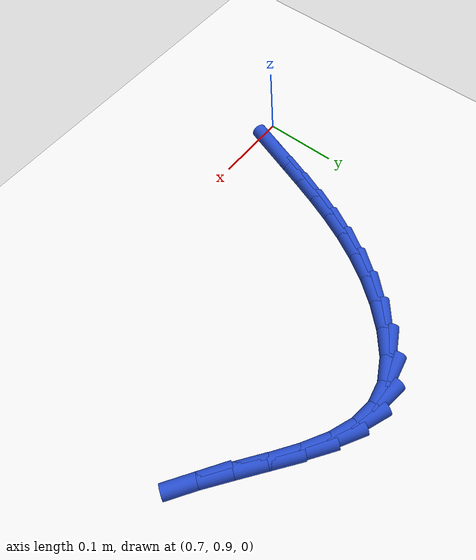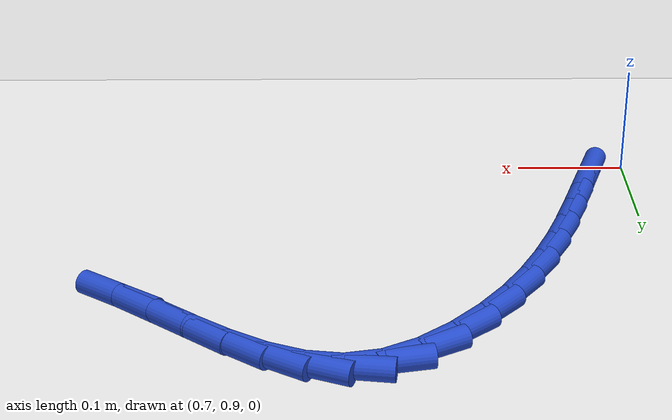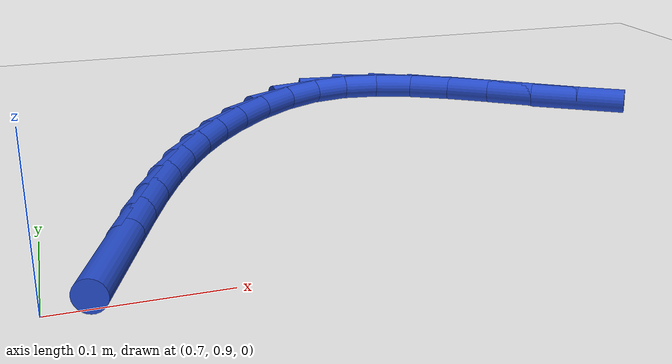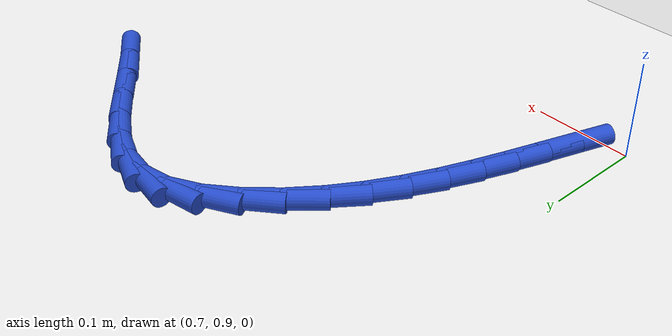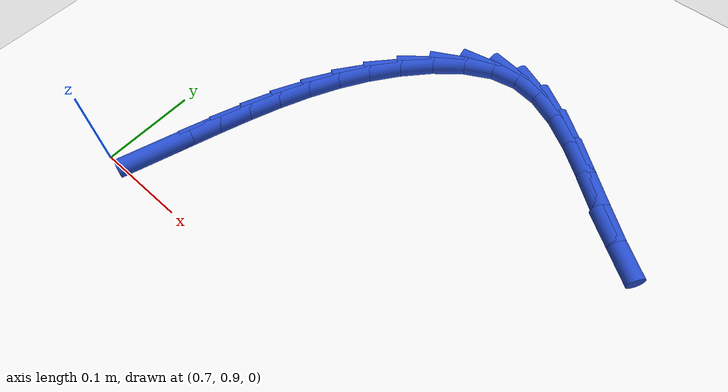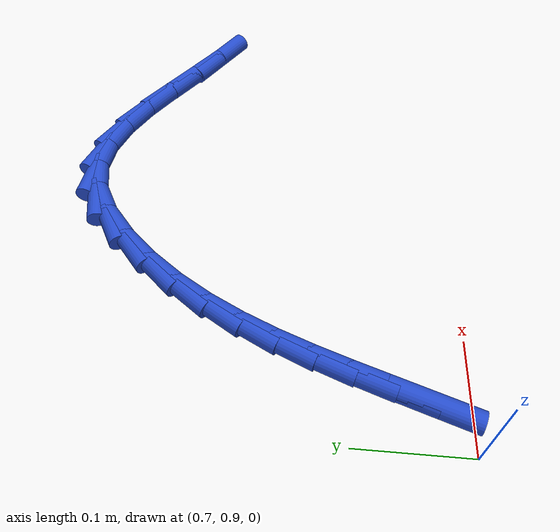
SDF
<sdf version="1.6">
 <world name="default">
  <model name="ground_plane">
   <static>1</static>
   <link name="link">
    <collision name="collision">
     <geometry><plane><normal>0 0 1</normal><size>100 100</size></plane></geometry>
     <surface><friction><ode><mu>100</mu><mu2>50</mu2></ode></friction></surface>
    </collision>
    <visual name="visual">
     <cast_shadows>0</cast_shadows>
     <geometry><plane><normal>0 0 1</normal><size>100 100</size></plane></geometry>
     <material>
      <script><uri>file://media/materials/scripts/gazebo.material</uri><name>Gazebo/WhiteGlow</name></script>
     </material>
    </visual>
   </link>
  </model>
  <model name="line">
   <link name="link_36">
    <pose>0.7375083986811577 0.9323461440054251 0.01 0 1.57 1.2480430231626474</pose>
    <collision name="collision">
     <geometry><cylinder><radius>0.01</radius><length>0.08</length></cylinder></geometry>
    </collision>
    <visual name="visual">
     <material>
      <script><name>Gazebo/Blue</name><uri>file://media/materials/scripts/gazebo.material</uri></script>
     </material>
     <geometry><cylinder><radius>0.01</radius><length>0.08</length></cylinder></geometry>
    </visual>
   </link>
   <link name="link_37">
    <pose>0.7485555973416003 0.9653772964910049 0.01 0 1.57 1.247229006031626</pose>
    <collision name="collision">
     <geometry><cylinder><radius>0.01</radius><length>0.08</length></cylinder></geometry>
    </collision>
    <visual name="visual">
     <material>
      <script><name>Gazebo/Blue</name><uri>file://media/materials/scripts/gazebo.material</uri></script>
     </material>
     <geometry><cylinder><radius>0.01</radius><length>0.08</length></cylinder></geometry>
    </visual>
   </link>
   <link name="link_38">
    <pose>0.7596241116926526 0.998382840333622 0.01 0 1.57 1.2309808173151962</pose>
    <collision name="collision">
     <geometry><cylinder><radius>0.01</radius><length>0.08</length></cylinder></geometry>
    </collision>
    <visual name="visual">
     <material>
      <script><name>Gazebo/Blue</name><uri>file://media/materials/scripts/gazebo.material</uri></script>
     </material>
     <geometry><cylinder><radius>0.01</radius><length>0.08</length></cylinder></geometry>
    </visual>
   </link>
   <link name="link_39">
    <pose>0.7712182721529552 1.0311783114360074 0.01 0 1.57 1.1992678507592647</pose>
    <collision name="collision">
     <geometry><cylinder><radius>0.01</radius><length>0.08</length></cylinder></geometry>
    </collision>
    <visual name="visual">
     <material>
      <script><name>Gazebo/Blue</name><uri>file://media/materials/scripts/gazebo.material</uri></script>
     </material>
     <geometry><cylinder><radius>0.01</radius><length>0.08</length></cylinder></geometry>
    </visual>
   </link>
   <link name="link_40">
    <pose>0.7838424091411494 1.0635792457008912 0.01 0 1.57 1.1521689373937378</pose>
    <collision name="collision">
     <geometry><cylinder><radius>0.01</radius><length>0.08</length></cylinder></geometry>
    </collision>
    <visual name="visual">
     <material>
      <script><name>Gazebo/Blue</name><uri>file://media/materials/scripts/gazebo.material</uri></script>
     </material>
     <geometry><cylinder><radius>0.01</radius><length>0.08</length></cylinder></geometry>
    </visual>
   </link>
   <link name="link_41">
    <pose>0.7980008530758755 1.0954011790310036 0.01 0 1.57 1.0900947491056725</pose>
    <collision name="collision">
     <geometry><cylinder><radius>0.01</radius><length>0.08</length></cylinder></geometry>
    </collision>
    <visual name="visual">
     <material>
      <script><name>Gazebo/Blue</name><uri>file://media/materials/scripts/gazebo.material</uri></script>
     </material>
     <geometry><cylinder><radius>0.01</radius><length>0.08</length></cylinder></geometry>
    </visual>
   </link>
   <link name="link_42">
    <pose>0.8141979343757745 1.1264596473290753 0.01 0 1.57 1.014086824967226</pose>
    <collision name="collision">
     <geometry><cylinder><radius>0.01</radius><length>0.08</length></cylinder></geometry>
    </collision>
    <visual name="visual">
     <material>
      <script><name>Gazebo/Blue</name><uri>file://media/materials/scripts/gazebo.material</uri></script>
     </material>
     <geometry><cylinder><radius>0.01</radius><length>0.08</length></cylinder></geometry>
    </visual>
   </link>
   <link name="link_43">
    <pose>0.8329379834594868 1.156570186497836 0.01 0 1.57 0.9261094413567204</pose>
    <collision name="collision">
     <geometry><cylinder><radius>0.01</radius><length>0.08</length></cylinder></geometry>
    </collision>
    <visual name="visual">
     <material>
      <script><name>Gazebo/Blue</name><uri>file://media/materials/scripts/gazebo.material</uri></script>
     </material>
     <geometry><cylinder><radius>0.01</radius><length>0.08</length></cylinder></geometry>
    </visual>
   </link>
   <link name="link_44">
    <pose>0.8547253307456534 1.1855483324400162 0.01 0 1.57 0.8272469703675408</pose>
    <collision name="collision">
     <geometry><cylinder><radius>0.01</radius><length>0.08</length></cylinder></geometry>
    </collision>
    <visual name="visual">
     <material>
      <script><name>Gazebo/Blue</name><uri>file://media/materials/scripts/gazebo.material</uri></script>
     </material>
     <geometry><cylinder><radius>0.01</radius><length>0.08</length></cylinder></geometry>
    </visual>
   </link>
   <link name="link_45">
    <pose>0.8799235861111885 1.2129490792001565 0.01 0 1.57 0.6980427215251891</pose>
    <collision name="collision">
     <geometry><cylinder><radius>0.01</radius><length>0.08</length></cylinder></geometry>
    </collision>
    <visual name="visual">
     <material>
      <script><name>Gazebo/Blue</name><uri>file://media/materials/scripts/gazebo.material</uri></script>
     </material>
     <geometry><cylinder><radius>0.01</radius><length>0.08</length></cylinder></geometry>
    </visual>
   </link>
   <link name="link_46">
    <pose>0.9078379370174183 1.2363677684541832 0.01 0 1.57 0.5012900157537306</pose>
    <collision name="collision">
     <geometry><cylinder><radius>0.01</radius><length>0.08</length></cylinder></geometry>
    </collision>
    <visual name="visual">
     <material>
      <script><name>Gazebo/Blue</name><uri>file://media/materials/scripts/gazebo.material</uri></script>
     </material>
     <geometry><cylinder><radius>0.01</radius><length>0.08</length></cylinder></geometry>
    </visual>
   </link>
   <link name="link_47">
    <pose>0.9372918821117273 1.2525079026545962 0.01 0 1.57 0.1946782709216213</pose>
    <collision name="collision">
     <geometry><cylinder><radius>0.01</radius><length>0.08</length></cylinder></geometry>
    </collision>
    <visual name="visual">
     <material>
      <script><name>Gazebo/Blue</name><uri>file://media/materials/scripts/gazebo.material</uri></script>
     </material>
     <geometry><cylinder><radius>0.01</radius><length>0.08</length></cylinder></geometry>
    </visual>
   </link>
   <link name="link_48">
    <pose>0.9671848943639096 1.2584020737128516 0.01 0 1.57 -0.136798270185684</pose>
    <collision name="collision">
     <geometry><cylinder><radius>0.01</radius><length>0.08</length></cylinder></geometry>
    </collision>
    <visual name="visual">
     <material>
      <script><name>Gazebo/Blue</name><uri>file://media/materials/scripts/gazebo.material</uri></script>
     </material>
     <geometry><cylinder><radius>0.01</radius><length>0.08</length></cylinder></geometry>
    </visual>
   </link>
   <link name="link_49">
    <pose>0.9971666805318862 1.2542748396861931 0.01 0 1.57 -0.38321469248800427</pose>
    <collision name="collision">
     <geometry><cylinder><radius>0.01</radius><length>0.08</length></cylinder></geometry>
    </collision>
    <visual name="visual">
     <material>
      <script><name>Gazebo/Blue</name><uri>file://media/materials/scripts/gazebo.material</uri></script>
     </material>
     <geometry><cylinder><radius>0.01</radius><length>0.08</length></cylinder></geometry>
    </visual>
   </link>
   <link name="link_50">
    <pose>1.0273039925993683 1.2421251311848647 0.01 0 1.57 -0.5388623405360768</pose>
    <collision name="collision">
     <geometry><cylinder><radius>0.01</radius><length>0.08</length></cylinder></geometry>
    </collision>
    <visual name="visual">
     <material>
      <script><name>Gazebo/Blue</name><uri>file://media/materials/scripts/gazebo.material</uri></script>
     </material>
     <geometry><cylinder><radius>0.01</radius><length>0.08</length></cylinder></geometry>
    </visual>
   </link>
   <link name="link_51">
    <pose>1.0576680610684848 1.2239709332517354 0.01 0 1.57 -0.6253968254231684</pose>
    <collision name="collision">
     <geometry><cylinder><radius>0.01</radius><length>0.08</length></cylinder></geometry>
    </collision>
    <visual name="visual">
     <material>
      <script><name>Gazebo/Blue</name><uri>file://media/materials/scripts/gazebo.material</uri></script>
     </material>
     <geometry><cylinder><radius>0.01</radius><length>0.08</length></cylinder></geometry>
    </visual>
   </link>
   <link name="link_52">
    <pose>1.0883301164413632 1.201830230929674 0.01 0 1.57 -0.6605166282434157</pose>
    <collision name="collision">
     <geometry><cylinder><radius>0.01</radius><length>0.08</length></cylinder></geometry>
    </collision>
    <visual name="visual">
     <material>
      <script><name>Gazebo/Blue</name><uri>file://media/materials/scripts/gazebo.material</uri></script>
     </material>
     <geometry><cylinder><radius>0.01</radius><length>0.08</length></cylinder></geometry>
    </visual>
   </link>
   <link name="link_53">
    <pose>1.1193613892201315 1.1777210092615484 0.01 0 1.57 -0.652709195439197</pose>
    <collision name="collision">
     <geometry><cylinder><radius>0.01</radius><length>0.08</length></cylinder></geometry>
    </collision>
    <visual name="visual">
     <material>
      <script><name>Gazebo/Blue</name><uri>file://media/materials/scripts/gazebo.material</uri></script>
     </material>
     <geometry><cylinder><radius>0.01</radius><length>0.08</length></cylinder></geometry>
    </visual>
   </link>
   <link name="link_54">
    <pose>1.1508331099069173 1.1536612532902284 0.01 0 1.57 -0.6023662868372007</pose>
    <collision name="collision">
     <geometry><cylinder><radius>0.01</radius><length>0.08</length></cylinder></geometry>
    </collision>
    <visual name="visual">
     <material>
      <script><name>Gazebo/Blue</name><uri>file://media/materials/scripts/gazebo.material</uri></script>
     </material>
     <geometry><cylinder><radius>0.01</radius><length>0.08</length></cylinder></geometry>
    </visual>
   </link>
  </model>
 </world>
</sdf>
